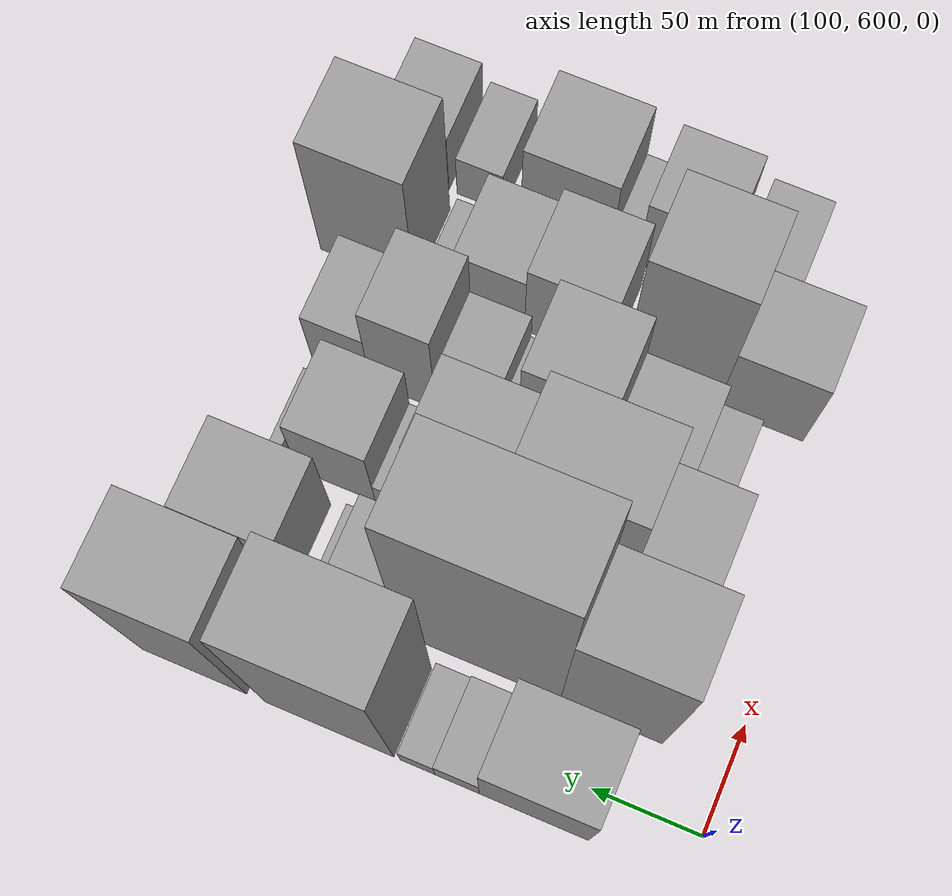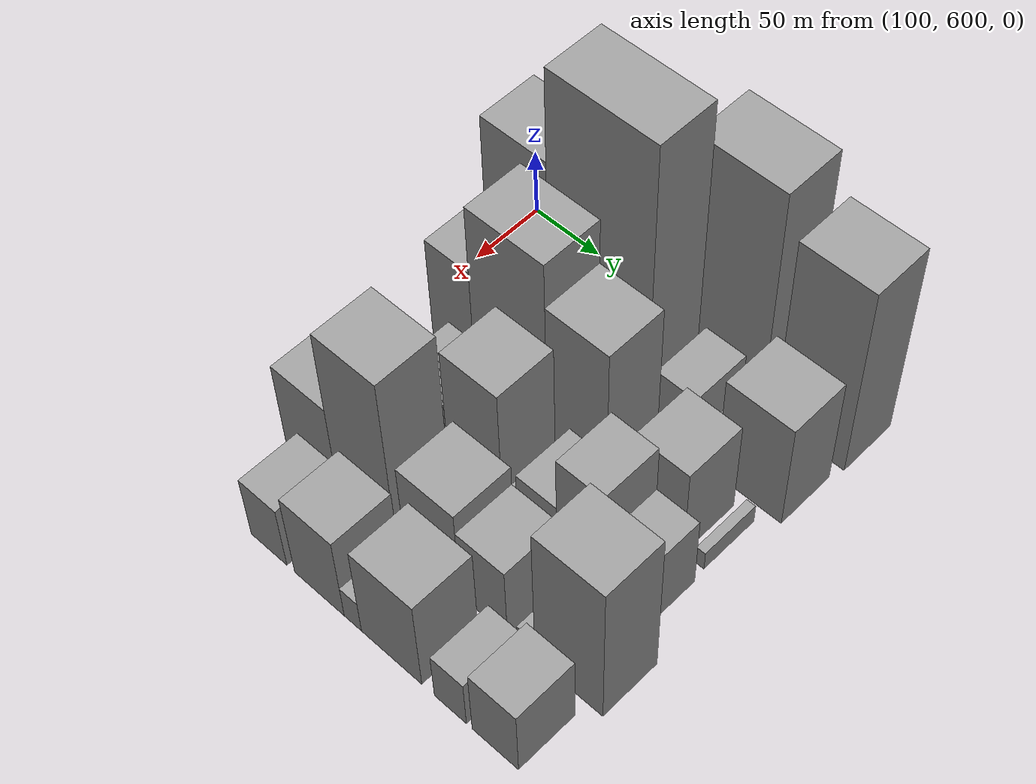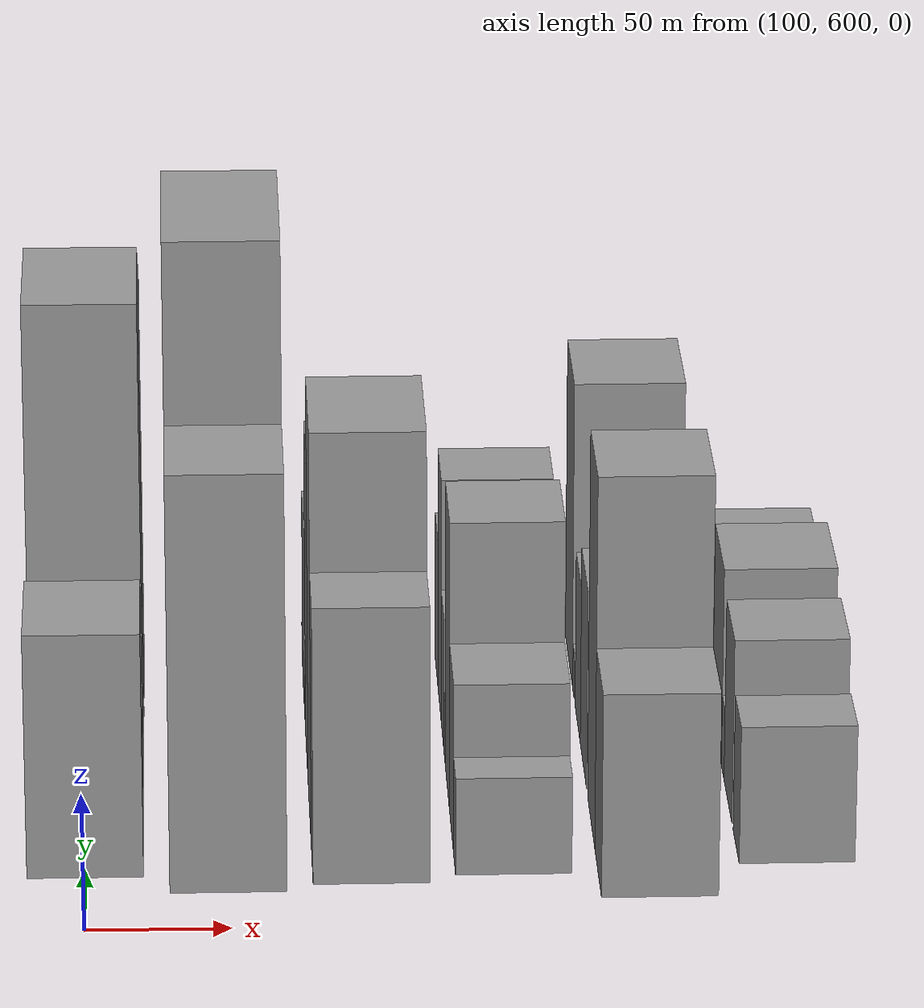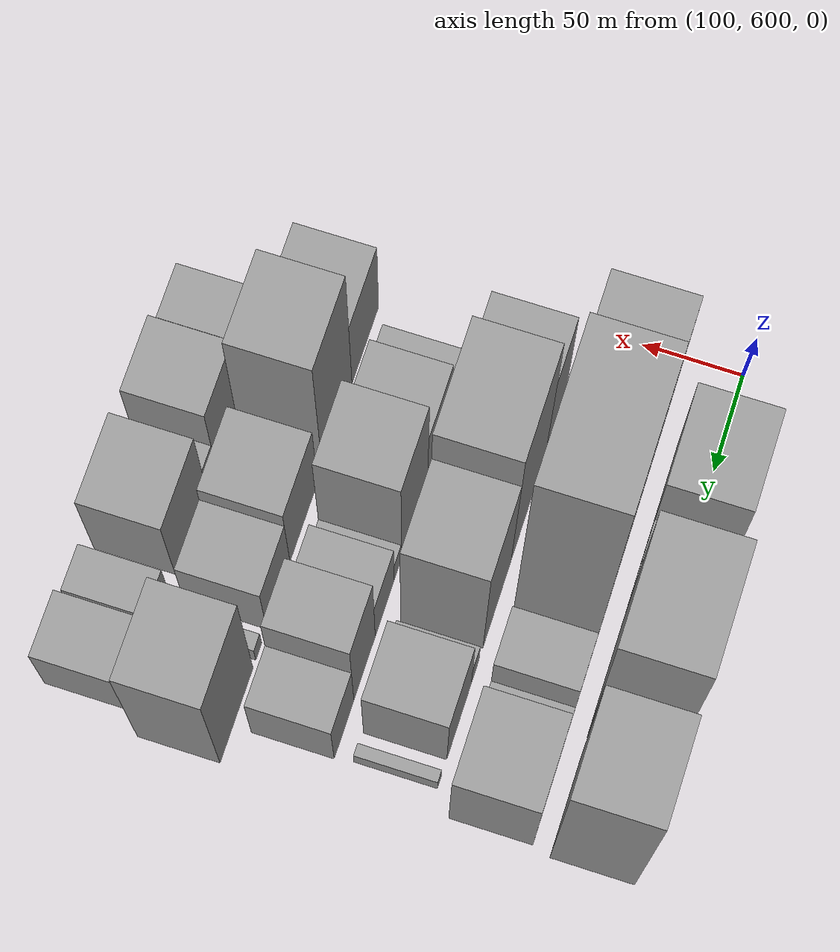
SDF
<sdf version="1.6">
 <world name="default">
  <model name="building_39">
   <static>1</static>
   <pose>100.0000 667.9489 0 0.000000 0.000000 0.000000</pose>
   <link name="link">
    <pose>0 0 45.00 0 0 0</pose>
    <collision name="collision"><geometry><box><size>40.0000 49.3814 90.0000</size></box></geometry></collision>
    <visual name="visual">
     <cast_shadows>0</cast_shadows>
     <geometry><box><size>40.0000 49.3814 90.0000</size></box></geometry>
     <material>
      <script>
       <uri>model://grey_wall/materials/scripts</uri>
       <uri>model://grey_wall/materials/textures</uri>
       <name>vrc/grey_wall</name>
      </script>
     </material>
    </visual>
   </link>
  </model>
  <model name="building_40">
   <static>1</static>
   <pose>100.0000 702.7262 0 0.000000 0.000000 0.000000</pose>
   <link name="link">
    <pose>0 0 18.00 0 0 0</pose>
    <collision name="collision"><geometry><box><size>40.0000 20.1732 36.0000</size></box></geometry></collision>
    <visual name="visual">
     <cast_shadows>0</cast_shadows>
     <geometry><box><size>40.0000 20.1732 36.0000</size></box></geometry>
     <material>
      <script>
       <uri>model://grey_wall/materials/scripts</uri>
       <uri>model://grey_wall/materials/textures</uri>
       <name>vrc/grey_wall</name>
      </script>
     </material>
    </visual>
   </link>
  </model>
  <model name="building_41">
   <static>1</static>
   <pose>100.0000 720.7292 0 0.000000 0.000000 0.000000</pose>
   <link name="link">
    <pose>0 0 15.00 0 0 0</pose>
    <collision name="collision"><geometry><box><size>40.0000 15.8327 30.0000</size></box></geometry></collision>
    <visual name="visual">
     <cast_shadows>0</cast_shadows>
     <geometry><box><size>40.0000 15.8327 30.0000</size></box></geometry>
     <material>
      <script>
       <uri>model://grey_wall/materials/scripts</uri>
       <uri>model://grey_wall/materials/textures</uri>
       <name>vrc/grey_wall</name>
      </script>
     </material>
    </visual>
   </link>
  </model>
  <model name="building_42">
   <static>1</static>
   <pose>100.0000 761.2971 0 0.000000 0.000000 0.000000</pose>
   <link name="link">
    <pose>0 0 88.50 0 0 0</pose>
    <collision name="collision"><geometry><box><size>40.0000 59.3031 177.0000</size></box></geometry></collision>
    <visual name="visual">
     <cast_shadows>0</cast_shadows>
     <geometry><box><size>40.0000 59.3031 177.0000</size></box></geometry>
     <material>
      <script>
       <uri>model://grey_wall/materials/scripts</uri>
       <uri>model://grey_wall/materials/textures</uri>
       <name>vrc/grey_wall</name>
      </script>
     </material>
    </visual>
   </link>
  </model>
  <model name="building_43">
   <static>1</static>
   <pose>100.0000 824.4423 0 0.000000 0.000000 0.000000</pose>
   <link name="link">
    <pose>0 0 75.00 0 0 0</pose>
    <collision name="collision"><geometry><box><size>40.0000 48.9874 150.0000</size></box></geometry></collision>
    <visual name="visual">
     <cast_shadows>0</cast_shadows>
     <geometry><box><size>40.0000 48.9874 150.0000</size></box></geometry>
     <material>
      <script>
       <uri>model://grey_wall/materials/scripts</uri>
       <uri>model://grey_wall/materials/textures</uri>
       <name>vrc/grey_wall</name>
      </script>
     </material>
    </visual>
   </link>
  </model>
  <model name="building_83">
   <static>1</static>
   <pose>149.0000 652.8227 0 0.000000 0.000000 0.000000</pose>
   <link name="link">
    <pose>0 0 76.50 0 0 0</pose>
    <collision name="collision"><geometry><box><size>40.0000 46.7869 153.0000</size></box></geometry></collision>
    <visual name="visual">
     <cast_shadows>0</cast_shadows>
     <geometry><box><size>40.0000 46.7869 153.0000</size></box></geometry>
     <material>
      <script>
       <uri>model://grey_wall/materials/scripts</uri>
       <uri>model://grey_wall/materials/textures</uri>
       <name>vrc/grey_wall</name>
      </script>
     </material>
    </visual>
   </link>
  </model>
  <model name="building_84">
   <static>1</static>
   <pose>149.0000 713.1505 0 0.000000 0.000000 0.000000</pose>
   <link name="link">
    <pose>0 0 109.50 0 0 0</pose>
    <collision name="collision"><geometry><box><size>40.0000 73.8688 219.0000</size></box></geometry></collision>
    <visual name="visual">
     <cast_shadows>0</cast_shadows>
     <geometry><box><size>40.0000 73.8688 219.0000</size></box></geometry>
     <material>
      <script>
       <uri>model://grey_wall/materials/scripts</uri>
       <uri>model://grey_wall/materials/textures</uri>
       <name>vrc/grey_wall</name>
      </script>
     </material>
    </visual>
   </link>
  </model>
  <model name="building_85">
   <static>1</static>
   <pose>149.0000 769.0644 0 0.000000 0.000000 0.000000</pose>
   <link name="link">
    <pose>0 0 25.50 0 0 0</pose>
    <collision name="collision"><geometry><box><size>40.0000 27.9590 51.0000</size></box></geometry></collision>
    <visual name="visual">
     <cast_shadows>0</cast_shadows>
     <geometry><box><size>40.0000 27.9590 51.0000</size></box></geometry>
     <material>
      <script>
       <uri>model://grey_wall/materials/scripts</uri>
       <uri>model://grey_wall/materials/textures</uri>
       <name>vrc/grey_wall</name>
      </script>
     </material>
    </visual>
   </link>
  </model>
  <model name="building_86">
   <static>1</static>
   <pose>149.0000 787.3751 0 0.000000 0.000000 0.000000</pose>
   <link name="link">
    <pose>0 0 9.00 0 0 0</pose>
    <collision name="collision"><geometry><box><size>40.0000 8.6623 18.0000</size></box></geometry></collision>
    <visual name="visual">
     <cast_shadows>0</cast_shadows>
     <geometry><box><size>40.0000 8.6623 18.0000</size></box></geometry>
     <material>
      <script>
       <uri>model://grey_wall/materials/scripts</uri>
       <uri>model://grey_wall/materials/textures</uri>
       <name>vrc/grey_wall</name>
      </script>
     </material>
    </visual>
   </link>
  </model>
  <model name="building_87">
   <static>1</static>
   <pose>149.0000 823.2641 0 0.000000 0.000000 0.000000</pose>
   <link name="link">
    <pose>0 0 42.00 0 0 0</pose>
    <collision name="collision"><geometry><box><size>40.0000 45.1156 84.0000</size></box></geometry></collision>
    <visual name="visual">
     <cast_shadows>0</cast_shadows>
     <geometry><box><size>40.0000 45.1156 84.0000</size></box></geometry>
     <material>
      <script>
       <uri>model://grey_wall/materials/scripts</uri>
       <uri>model://grey_wall/materials/textures</uri>
       <name>vrc/grey_wall</name>
      </script>
     </material>
    </visual>
   </link>
  </model>
  <model name="building_126">
   <static>1</static>
   <pose>198.0000 651.1592 0 0.000000 0.000000 0.000000</pose>
   <link name="link">
    <pose>0 0 51.00 0 0 0</pose>
    <collision name="collision"><geometry><box><size>40.0000 32.3549 102.0000</size></box></geometry></collision>
    <visual name="visual">
     <cast_shadows>0</cast_shadows>
     <geometry><box><size>40.0000 32.3549 102.0000</size></box></geometry>
     <material>
      <script>
       <uri>model://grey_wall/materials/scripts</uri>
       <uri>model://grey_wall/materials/textures</uri>
       <name>vrc/grey_wall</name>
      </script>
     </material>
    </visual>
   </link>
  </model>
  <model name="building_127">
   <static>1</static>
   <pose>198.0000 694.6096 0 0.000000 0.000000 0.000000</pose>
   <link name="link">
    <pose>0 0 76.50 0 0 0</pose>
    <collision name="collision"><geometry><box><size>40.0000 54.5460 153.0000</size></box></geometry></collision>
    <visual name="visual">
     <cast_shadows>0</cast_shadows>
     <geometry><box><size>40.0000 54.5460 153.0000</size></box></geometry>
     <material>
      <script>
       <uri>model://grey_wall/materials/scripts</uri>
       <uri>model://grey_wall/materials/textures</uri>
       <name>vrc/grey_wall</name>
      </script>
     </material>
    </visual>
   </link>
  </model>
  <model name="building_128">
   <static>1</static>
   <pose>198.0000 743.6714 0 0.000000 0.000000 0.000000</pose>
   <link name="link">
    <pose>0 0 60.00 0 0 0</pose>
    <collision name="collision"><geometry><box><size>40.0000 43.5775 120.0000</size></box></geometry></collision>
    <visual name="visual">
     <cast_shadows>0</cast_shadows>
     <geometry><box><size>40.0000 43.5775 120.0000</size></box></geometry>
     <material>
      <script>
       <uri>model://grey_wall/materials/scripts</uri>
       <uri>model://grey_wall/materials/textures</uri>
       <name>vrc/grey_wall</name>
      </script>
     </material>
    </visual>
   </link>
  </model>
  <model name="building_129">
   <static>1</static>
   <pose>198.0000 777.4363 0 0.000000 0.000000 0.000000</pose>
   <link name="link">
    <pose>0 0 13.50 0 0 0</pose>
    <collision name="collision"><geometry><box><size>40.0000 11.9522 27.0000</size></box></geometry></collision>
    <visual name="visual">
     <cast_shadows>0</cast_shadows>
     <geometry><box><size>40.0000 11.9522 27.0000</size></box></geometry>
     <material>
      <script>
       <uri>model://grey_wall/materials/scripts</uri>
       <uri>model://grey_wall/materials/textures</uri>
       <name>vrc/grey_wall</name>
      </script>
     </material>
    </visual>
   </link>
  </model>
  <model name="building_130">
   <static>1</static>
   <pose>198.0000 801.9048 0 0.000000 0.000000 0.000000</pose>
   <link name="link">
    <pose>0 0 36.00 0 0 0</pose>
    <collision name="collision"><geometry><box><size>40.0000 36.9848 72.0000</size></box></geometry></collision>
    <visual name="visual">
     <cast_shadows>0</cast_shadows>
     <geometry><box><size>40.0000 36.9848 72.0000</size></box></geometry>
     <material>
      <script>
       <uri>model://grey_wall/materials/scripts</uri>
       <uri>model://grey_wall/materials/textures</uri>
       <name>vrc/grey_wall</name>
      </script>
     </material>
    </visual>
   </link>
  </model>
  <model name="building_131">
   <static>1</static>
   <pose>198.0000 831.4427 0 0.000000 0.000000 0.000000</pose>
   <link name="link">
    <pose>0 0 7.50 0 0 0</pose>
    <collision name="collision"><geometry><box><size>40.0000 6.0911 15.0000</size></box></geometry></collision>
    <visual name="visual">
     <cast_shadows>0</cast_shadows>
     <geometry><box><size>40.0000 6.0911 15.0000</size></box></geometry>
     <material>
      <script>
       <uri>model://grey_wall/materials/scripts</uri>
       <uri>model://grey_wall/materials/textures</uri>
       <name>vrc/grey_wall</name>
      </script>
     </material>
    </visual>
   </link>
  </model>
  <model name="building_175">
   <static>1</static>
   <pose>247.0000 650.1724 0 0.000000 0.000000 0.000000</pose>
   <link name="link">
    <pose>0 0 18.00 0 0 0</pose>
    <collision name="collision"><geometry><box><size>40.0000 18.2806 36.0000</size></box></geometry></collision>
    <visual name="visual">
     <cast_shadows>0</cast_shadows>
     <geometry><box><size>40.0000 18.2806 36.0000</size></box></geometry>
     <material>
      <script>
       <uri>model://grey_wall/materials/scripts</uri>
       <uri>model://grey_wall/materials/textures</uri>
       <name>vrc/grey_wall</name>
      </script>
     </material>
    </visual>
   </link>
  </model>
  <model name="building_176">
   <static>1</static>
   <pose>247.0000 677.8044 0 0.000000 0.000000 0.000000</pose>
   <link name="link">
    <pose>0 0 31.50 0 0 0</pose>
    <collision name="collision"><geometry><box><size>40.0000 36.9833 63.0000</size></box></geometry></collision>
    <visual name="visual">
     <cast_shadows>0</cast_shadows>
     <geometry><box><size>40.0000 36.9833 63.0000</size></box></geometry>
     <material>
      <script>
       <uri>model://grey_wall/materials/scripts</uri>
       <uri>model://grey_wall/materials/textures</uri>
       <name>vrc/grey_wall</name>
      </script>
     </material>
    </visual>
   </link>
  </model>
  <model name="building_177">
   <static>1</static>
   <pose>247.0000 716.3649 0 0.000000 0.000000 0.000000</pose>
   <link name="link">
    <pose>0 0 54.00 0 0 0</pose>
    <collision name="collision"><geometry><box><size>40.0000 40.1377 108.0000</size></box></geometry></collision>
    <visual name="visual">
     <cast_shadows>0</cast_shadows>
     <geometry><box><size>40.0000 40.1377 108.0000</size></box></geometry>
     <material>
      <script>
       <uri>model://grey_wall/materials/scripts</uri>
       <uri>model://grey_wall/materials/textures</uri>
       <name>vrc/grey_wall</name>
      </script>
     </material>
    </visual>
   </link>
  </model>
  <model name="building_178">
   <static>1</static>
   <pose>247.0000 741.8140 0 0.000000 0.000000 0.000000</pose>
   <link name="link">
    <pose>0 0 12.00 0 0 0</pose>
    <collision name="collision"><geometry><box><size>40.0000 10.7604 24.0000</size></box></geometry></collision>
    <visual name="visual">
     <cast_shadows>0</cast_shadows>
     <geometry><box><size>40.0000 10.7604 24.0000</size></box></geometry>
     <material>
      <script>
       <uri>model://grey_wall/materials/scripts</uri>
       <uri>model://grey_wall/materials/textures</uri>
       <name>vrc/grey_wall</name>
      </script>
     </material>
    </visual>
   </link>
  </model>
  <model name="building_179">
   <static>1</static>
   <pose>247.0000 761.4482 0 0.000000 0.000000 0.000000</pose>
   <link name="link">
    <pose>0 0 25.50 0 0 0</pose>
    <collision name="collision"><geometry><box><size>40.0000 28.5081 51.0000</size></box></geometry></collision>
    <visual name="visual">
     <cast_shadows>0</cast_shadows>
     <geometry><box><size>40.0000 28.5081 51.0000</size></box></geometry>
     <material>
      <script>
       <uri>model://grey_wall/materials/scripts</uri>
       <uri>model://grey_wall/materials/textures</uri>
       <name>vrc/grey_wall</name>
      </script>
     </material>
    </visual>
   </link>
  </model>
  <model name="building_180">
   <static>1</static>
   <pose>247.0000 791.4856 0 0.000000 0.000000 0.000000</pose>
   <link name="link">
    <pose>0 0 46.50 0 0 0</pose>
    <collision name="collision"><geometry><box><size>40.0000 31.5667 93.0000</size></box></geometry></collision>
    <visual name="visual">
     <cast_shadows>0</cast_shadows>
     <geometry><box><size>40.0000 31.5667 93.0000</size></box></geometry>
     <material>
      <script>
       <uri>model://grey_wall/materials/scripts</uri>
       <uri>model://grey_wall/materials/textures</uri>
       <name>vrc/grey_wall</name>
      </script>
     </material>
    </visual>
   </link>
  </model>
  <model name="building_181">
   <static>1</static>
   <pose>247.0000 821.5796 0 0.000000 0.000000 0.000000</pose>
   <link name="link">
    <pose>0 0 28.50 0 0 0</pose>
    <collision name="collision"><geometry><box><size>40.0000 28.6212 57.0000</size></box></geometry></collision>
    <visual name="visual">
     <cast_shadows>0</cast_shadows>
     <geometry><box><size>40.0000 28.6212 57.0000</size></box></geometry>
     <material>
      <script>
       <uri>model://grey_wall/materials/scripts</uri>
       <uri>model://grey_wall/materials/textures</uri>
       <name>vrc/grey_wall</name>
      </script>
     </material>
    </visual>
   </link>
  </model>
  <model name="building_225">
   <static>1</static>
   <pose>296.0000 641.0123 0 0.000000 0.000000 0.000000</pose>
   <link name="link">
    <pose>0 0 37.50 0 0 0</pose>
    <collision name="collision"><geometry><box><size>40.0000 40.6762 75.0000</size></box></geometry></collision>
    <visual name="visual">
     <cast_shadows>0</cast_shadows>
     <geometry><box><size>40.0000 40.6762 75.0000</size></box></geometry>
     <material>
      <script>
       <uri>model://grey_wall/materials/scripts</uri>
       <uri>model://grey_wall/materials/textures</uri>
       <name>vrc/grey_wall</name>
      </script>
     </material>
    </visual>
   </link>
  </model>
  <model name="building_226">
   <static>1</static>
   <pose>296.0000 683.6834 0 0.000000 0.000000 0.000000</pose>
   <link name="link">
    <pose>0 0 69.00 0 0 0</pose>
    <collision name="collision"><geometry><box><size>40.0000 44.6662 138.0000</size></box></geometry></collision>
    <visual name="visual">
     <cast_shadows>0</cast_shadows>
     <geometry><box><size>40.0000 44.6662 138.0000</size></box></geometry>
     <material>
      <script>
       <uri>model://grey_wall/materials/scripts</uri>
       <uri>model://grey_wall/materials/textures</uri>
       <name>vrc/grey_wall</name>
      </script>
     </material>
    </visual>
   </link>
  </model>
  <model name="building_227">
   <static>1</static>
   <pose>296.0000 733.3504 0 0.000000 0.000000 0.000000</pose>
   <link name="link">
    <pose>0 0 37.50 0 0 0</pose>
    <collision name="collision"><geometry><box><size>40.0000 40.6678 75.0000</size></box></geometry></collision>
    <visual name="visual">
     <cast_shadows>0</cast_shadows>
     <geometry><box><size>40.0000 40.6678 75.0000</size></box></geometry>
     <material>
      <script>
       <uri>model://grey_wall/materials/scripts</uri>
       <uri>model://grey_wall/materials/textures</uri>
       <name>vrc/grey_wall</name>
      </script>
     </material>
    </visual>
   </link>
  </model>
  <model name="building_228">
   <static>1</static>
   <pose>296.0000 770.6549 0 0.000000 0.000000 0.000000</pose>
   <link name="link">
    <pose>0 0 30.00 0 0 0</pose>
    <collision name="collision"><geometry><box><size>40.0000 33.9411 60.0000</size></box></geometry></collision>
    <visual name="visual">
     <cast_shadows>0</cast_shadows>
     <geometry><box><size>40.0000 33.9411 60.0000</size></box></geometry>
     <material>
      <script>
       <uri>model://grey_wall/materials/scripts</uri>
       <uri>model://grey_wall/materials/textures</uri>
       <name>vrc/grey_wall</name>
      </script>
     </material>
    </visual>
   </link>
  </model>
  <model name="building_229">
   <static>1</static>
   <pose>296.0000 798.8704 0 0.000000 0.000000 0.000000</pose>
   <link name="link">
    <pose>0 0 9.00 0 0 0</pose>
    <collision name="collision"><geometry><box><size>40.0000 8.4899 18.0000</size></box></geometry></collision>
    <visual name="visual">
     <cast_shadows>0</cast_shadows>
     <geometry><box><size>40.0000 8.4899 18.0000</size></box></geometry>
     <material>
      <script>
       <uri>model://grey_wall/materials/scripts</uri>
       <uri>model://grey_wall/materials/textures</uri>
       <name>vrc/grey_wall</name>
      </script>
     </material>
    </visual>
   </link>
  </model>
  <model name="building_230">
   <static>1</static>
   <pose>296.0000 830.4220 0 0.000000 0.000000 0.000000</pose>
   <link name="link">
    <pose>0 0 58.50 0 0 0</pose>
    <collision name="collision"><geometry><box><size>40.0000 46.6134 117.0000</size></box></geometry></collision>
    <visual name="visual">
     <cast_shadows>0</cast_shadows>
     <geometry><box><size>40.0000 46.6134 117.0000</size></box></geometry>
     <material>
      <script>
       <uri>model://grey_wall/materials/scripts</uri>
       <uri>model://grey_wall/materials/textures</uri>
       <name>vrc/grey_wall</name>
      </script>
     </material>
    </visual>
   </link>
  </model>
  <model name="building_275">
   <static>1</static>
   <pose>345.0000 661.0870 0 0.000000 0.000000 0.000000</pose>
   <link name="link">
    <pose>0 0 25.50 0 0 0</pose>
    <collision name="collision"><geometry><box><size>40.0000 27.9521 51.0000</size></box></geometry></collision>
    <visual name="visual">
     <cast_shadows>0</cast_shadows>
     <geometry><box><size>40.0000 27.9521 51.0000</size></box></geometry>
     <material>
      <script>
       <uri>model://grey_wall/materials/scripts</uri>
       <uri>model://grey_wall/materials/textures</uri>
       <name>vrc/grey_wall</name>
      </script>
     </material>
    </visual>
   </link>
  </model>
  <model name="building_276">
   <static>1</static>
   <pose>345.0000 699.9687 0 0.000000 0.000000 0.000000</pose>
   <link name="link">
    <pose>0 0 34.50 0 0 0</pose>
    <collision name="collision"><geometry><box><size>40.0000 37.8112 69.0000</size></box></geometry></collision>
    <visual name="visual">
     <cast_shadows>0</cast_shadows>
     <geometry><box><size>40.0000 37.8112 69.0000</size></box></geometry>
     <material>
      <script>
       <uri>model://grey_wall/materials/scripts</uri>
       <uri>model://grey_wall/materials/textures</uri>
       <name>vrc/grey_wall</name>
      </script>
     </material>
    </visual>
   </link>
  </model>
  <model name="building_277">
   <static>1</static>
   <pose>345.0000 725.3372 0 0.000000 0.000000 0.000000</pose>
   <link name="link">
    <pose>0 0 13.50 0 0 0</pose>
    <collision name="collision"><geometry><box><size>40.0000 12.9260 27.0000</size></box></geometry></collision>
    <visual name="visual">
     <cast_shadows>0</cast_shadows>
     <geometry><box><size>40.0000 12.9260 27.0000</size></box></geometry>
     <material>
      <script>
       <uri>model://grey_wall/materials/scripts</uri>
       <uri>model://grey_wall/materials/textures</uri>
       <name>vrc/grey_wall</name>
      </script>
     </material>
    </visual>
   </link>
  </model>
  <model name="building_278">
   <static>1</static>
   <pose>345.0000 753.8103 0 0.000000 0.000000 0.000000</pose>
   <link name="link">
    <pose>0 0 37.50 0 0 0</pose>
    <collision name="collision"><geometry><box><size>40.0000 44.0200 75.0000</size></box></geometry></collision>
    <visual name="visual">
     <cast_shadows>0</cast_shadows>
     <geometry><box><size>40.0000 44.0200 75.0000</size></box></geometry>
     <material>
      <script>
       <uri>model://grey_wall/materials/scripts</uri>
       <uri>model://grey_wall/materials/textures</uri>
       <name>vrc/grey_wall</name>
      </script>
     </material>
    </visual>
   </link>
  </model>
  <model name="building_279">
   <static>1</static>
   <pose>345.0000 796.1202 0 0.000000 0.000000 0.000000</pose>
   <link name="link">
    <pose>0 0 19.50 0 0 0</pose>
    <collision name="collision"><geometry><box><size>40.0000 22.5999 39.0000</size></box></geometry></collision>
    <visual name="visual">
     <cast_shadows>0</cast_shadows>
     <geometry><box><size>40.0000 22.5999 39.0000</size></box></geometry>
     <material>
      <script>
       <uri>model://grey_wall/materials/scripts</uri>
       <uri>model://grey_wall/materials/textures</uri>
       <name>vrc/grey_wall</name>
      </script>
     </material>
    </visual>
   </link>
  </model>
  <model name="building_280">
   <static>1</static>
   <pose>345.0000 827.3691 0 0.000000 0.000000 0.000000</pose>
   <link name="link">
    <pose>0 0 27.00 0 0 0</pose>
    <collision name="collision"><geometry><box><size>40.0000 31.8979 54.0000</size></box></geometry></collision>
    <visual name="visual">
     <cast_shadows>0</cast_shadows>
     <geometry><box><size>40.0000 31.8979 54.0000</size></box></geometry>
     <material>
      <script>
       <uri>model://grey_wall/materials/scripts</uri>
       <uri>model://grey_wall/materials/textures</uri>
       <name>vrc/grey_wall</name>
      </script>
     </material>
    </visual>
   </link>
  </model>
 </world>
</sdf>
